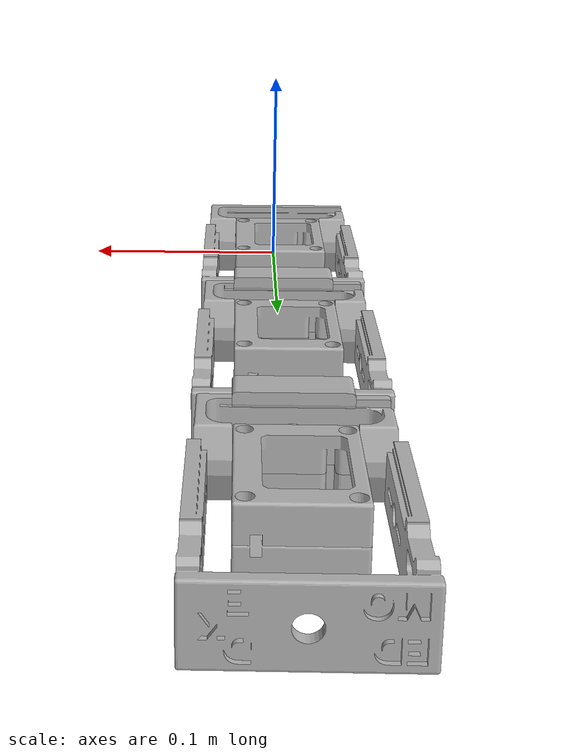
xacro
<?xml version="1.0" ?>
<robot name="edmo_assembly_3" xmlns:xacro="http://www.ros.org/wiki/xacro">

<xacro:include filename="$(find edmo_assembly_3_description)/urdf/materials.xacro" />
<xacro:include filename="$(find edmo_assembly_3_description)/urdf/edmo_assembly_3.trans" />
<xacro:include filename="$(find edmo_assembly_3_description)/urdf/edmo_assembly_3.gazebo" />
<link name="base_link">
  <inertial>
    <origin xyz="0.001207821669588994 0.03183223535104824 0.009531427697973608" rpy="0 0 0"/>
    <mass value="0.03847845253485034"/>
    <inertia ixx="3.3e-05" iyy="2.2e-05" izz="4.9e-05" ixy="-2e-06" iyz="3e-06" ixz="-0.0"/>
  </inertial>
  <visual>
    <origin xyz="0 0 0" rpy="0 0 0"/>
    <geometry>
      <mesh filename="package://edmo_assembly_3_description/meshes/base_link.stl" scale="0.001 0.001 0.001"/>
    </geometry>
    <material name="silver"/>
  </visual>
  <collision>
    <origin xyz="0 0 0" rpy="0 0 0"/>
    <geometry>
      <mesh filename="package://edmo_assembly_3_description/meshes/base_link.stl" scale="0.001 0.001 0.001"/>
    </geometry>
  </collision>
</link>

<link name="cover_1_1">
  <inertial>
    <origin xyz="-0.016929545310755478 -0.02470471330292899 0.008504756252304525" rpy="0 0 0"/>
    <mass value="0.014555566232575165"/>
    <inertia ixx="8e-06" iyy="3e-06" izz="1e-05" ixy="0.0" iyz="-0.0" ixz="-0.0"/>
  </inertial>
  <visual>
    <origin xyz="-0.017087 -0.080154 -0.012861" rpy="0 0 0"/>
    <geometry>
      <mesh filename="package://edmo_assembly_3_description/meshes/cover_1_1.stl" scale="0.001 0.001 0.001"/>
    </geometry>
    <material name="silver"/>
  </visual>
  <collision>
    <origin xyz="-0.017087 -0.080154 -0.012861" rpy="0 0 0"/>
    <geometry>
      <mesh filename="package://edmo_assembly_3_description/meshes/cover_1_1.stl" scale="0.001 0.001 0.001"/>
    </geometry>
  </collision>
</link>

<link name="arm_1_1">
  <inertial>
    <origin xyz="0.021513589764209494 0.026646215817656083 -0.049329859620566054" rpy="0 0 0"/>
    <mass value="0.03728860045356832"/>
    <inertia ixx="3.7e-05" iyy="4.1e-05" izz="7.3e-05" ixy="-0.0" iyz="0.0" ixz="-0.0"/>
  </inertial>
  <visual>
    <origin xyz="0.0225 -0.068065 -0.062065" rpy="0 0 0"/>
    <geometry>
      <mesh filename="package://edmo_assembly_3_description/meshes/arm_1_1.stl" scale="0.001 0.001 0.001"/>
    </geometry>
    <material name="silver"/>
  </visual>
  <collision>
    <origin xyz="0.0225 -0.068065 -0.062065" rpy="0 0 0"/>
    <geometry>
      <mesh filename="package://edmo_assembly_3_description/meshes/arm_1_1.stl" scale="0.001 0.001 0.001"/>
    </geometry>
  </collision>
</link>

<link name="straight_connector_1_1">
  <inertial>
    <origin xyz="4.431175758946946e-07 0.0025522929315751897 0.007885426989267698" rpy="0 0 0"/>
    <mass value="0.007137238748366013"/>
    <inertia ixx="1e-06" iyy="2e-06" izz="1e-06" ixy="0.0" iyz="-0.0" ixz="-0.0"/>
  </inertial>
  <visual>
    <origin xyz="0.001163 -0.126204 -0.012911" rpy="0 0 0"/>
    <geometry>
      <mesh filename="package://edmo_assembly_3_description/meshes/straight_connector_1_1.stl" scale="0.001 0.001 0.001"/>
    </geometry>
    <material name="silver"/>
  </visual>
  <collision>
    <origin xyz="0.001163 -0.126204 -0.012911" rpy="0 0 0"/>
    <geometry>
      <mesh filename="package://edmo_assembly_3_description/meshes/straight_connector_1_1.stl" scale="0.001 0.001 0.001"/>
    </geometry>
  </collision>
</link>

<link name="arm_2_1">
  <inertial>
    <origin xyz="0.021513589764212783 0.0265962158176552 -0.18217985962056651" rpy="0 0 0"/>
    <mass value="0.03728860045356832"/>
    <inertia ixx="3.7e-05" iyy="4.1e-05" izz="7.3e-05" ixy="-0.0" iyz="0.0" ixz="-0.0"/>
  </inertial>
  <visual>
    <origin xyz="0.0225 -0.200965 -0.194965" rpy="0 0 0"/>
    <geometry>
      <mesh filename="package://edmo_assembly_3_description/meshes/arm_2_1.stl" scale="0.001 0.001 0.001"/>
    </geometry>
    <material name="silver"/>
  </visual>
  <collision>
    <origin xyz="0.0225 -0.200965 -0.194965" rpy="0 0 0"/>
    <geometry>
      <mesh filename="package://edmo_assembly_3_description/meshes/arm_2_1.stl" scale="0.001 0.001 0.001"/>
    </geometry>
  </collision>
</link>

<link name="cover_2_1">
  <inertial>
    <origin xyz="-0.016929545310752102 -0.024704713302928588 0.008504756252304296" rpy="0 0 0"/>
    <mass value="0.014555566232575165"/>
    <inertia ixx="8e-06" iyy="3e-06" izz="1e-05" ixy="0.0" iyz="-0.0" ixz="-0.0"/>
  </inertial>
  <visual>
    <origin xyz="-0.017087 -0.213004 -0.012911" rpy="0 0 0"/>
    <geometry>
      <mesh filename="package://edmo_assembly_3_description/meshes/cover_2_1.stl" scale="0.001 0.001 0.001"/>
    </geometry>
    <material name="silver"/>
  </visual>
  <collision>
    <origin xyz="-0.017087 -0.213004 -0.012911" rpy="0 0 0"/>
    <geometry>
      <mesh filename="package://edmo_assembly_3_description/meshes/cover_2_1.stl" scale="0.001 0.001 0.001"/>
    </geometry>
  </collision>
</link>

<link name="base_link_2_1">
  <inertial>
    <origin xyz="0.002370821669591329 0.03347823535104821 -0.0033295723020268005" rpy="0 0 0"/>
    <mass value="0.03847845253485034"/>
    <inertia ixx="3.3e-05" iyy="2.2e-05" izz="4.9e-05" ixy="-2e-06" iyz="3e-06" ixz="-0.0"/>
  </inertial>
  <visual>
    <origin xyz="0.001163 -0.131204 -0.012911" rpy="0 0 0"/>
    <geometry>
      <mesh filename="package://edmo_assembly_3_description/meshes/base_link_2_1.stl" scale="0.001 0.001 0.001"/>
    </geometry>
    <material name="silver"/>
  </visual>
  <collision>
    <origin xyz="0.001163 -0.131204 -0.012911" rpy="0 0 0"/>
    <geometry>
      <mesh filename="package://edmo_assembly_3_description/meshes/base_link_2_1.stl" scale="0.001 0.001 0.001"/>
    </geometry>
  </collision>
</link>

<link name="straight_connector_2_1">
  <inertial>
    <origin xyz="4.4311757860324846e-07 0.0025522929315747733 0.007885426989267148" rpy="0 0 0"/>
    <mass value="0.007137238748366013"/>
    <inertia ixx="1e-06" iyy="2e-06" izz="1e-06" ixy="0.0" iyz="-0.0" ixz="-0.0"/>
  </inertial>
  <visual>
    <origin xyz="0.001163 -0.259054 -0.012961" rpy="0 0 0"/>
    <geometry>
      <mesh filename="package://edmo_assembly_3_description/meshes/straight_connector_2_1.stl" scale="0.001 0.001 0.001"/>
    </geometry>
    <material name="silver"/>
  </visual>
  <collision>
    <origin xyz="0.001163 -0.259054 -0.012961" rpy="0 0 0"/>
    <geometry>
      <mesh filename="package://edmo_assembly_3_description/meshes/straight_connector_2_1.stl" scale="0.001 0.001 0.001"/>
    </geometry>
  </collision>
</link>

<link name="base_link_3_1">
  <inertial>
    <origin xyz="0.0023708216695982037 0.03347823535104755 -0.003329572302027255" rpy="0 0 0"/>
    <mass value="0.03847845253485034"/>
    <inertia ixx="3.3e-05" iyy="2.2e-05" izz="4.9e-05" ixy="-2e-06" iyz="3e-06" ixz="-0.0"/>
  </inertial>
  <visual>
    <origin xyz="0.001163 -0.264054 -0.012961" rpy="0 0 0"/>
    <geometry>
      <mesh filename="package://edmo_assembly_3_description/meshes/base_link_3_1.stl" scale="0.001 0.001 0.001"/>
    </geometry>
    <material name="silver"/>
  </visual>
  <collision>
    <origin xyz="0.001163 -0.264054 -0.012961" rpy="0 0 0"/>
    <geometry>
      <mesh filename="package://edmo_assembly_3_description/meshes/base_link_3_1.stl" scale="0.001 0.001 0.001"/>
    </geometry>
  </collision>
</link>

<link name="cover_3_1">
  <inertial>
    <origin xyz="-0.016929545310742148 -0.02470471330292895 0.008504756252304065" rpy="0 0 0"/>
    <mass value="0.014555566232575165"/>
    <inertia ixx="8e-06" iyy="3e-06" izz="1e-05" ixy="0.0" iyz="-0.0" ixz="-0.0"/>
  </inertial>
  <visual>
    <origin xyz="-0.017087 -0.345854 -0.012961" rpy="0 0 0"/>
    <geometry>
      <mesh filename="package://edmo_assembly_3_description/meshes/cover_3_1.stl" scale="0.001 0.001 0.001"/>
    </geometry>
    <material name="silver"/>
  </visual>
  <collision>
    <origin xyz="-0.017087 -0.345854 -0.012961" rpy="0 0 0"/>
    <geometry>
      <mesh filename="package://edmo_assembly_3_description/meshes/cover_3_1.stl" scale="0.001 0.001 0.001"/>
    </geometry>
  </collision>
</link>

<link name="arm_3_1">
  <inertial>
    <origin xyz="0.02151358976422113 0.026546215817649932 -0.315029859620567" rpy="0 0 0"/>
    <mass value="0.03728860045356832"/>
    <inertia ixx="3.7e-05" iyy="4.1e-05" izz="7.3e-05" ixy="-0.0" iyz="0.0" ixz="-0.0"/>
  </inertial>
  <visual>
    <origin xyz="0.0225 -0.333865 -0.327865" rpy="0 0 0"/>
    <geometry>
      <mesh filename="package://edmo_assembly_3_description/meshes/arm_3_1.stl" scale="0.001 0.001 0.001"/>
    </geometry>
    <material name="silver"/>
  </visual>
  <collision>
    <origin xyz="0.0225 -0.333865 -0.327865" rpy="0 0 0"/>
    <geometry>
      <mesh filename="package://edmo_assembly_3_description/meshes/arm_3_1.stl" scale="0.001 0.001 0.001"/>
    </geometry>
  </collision>
</link>

<joint name="Rigid4" type="fixed">
  <origin xyz="0.017087 0.080154 0.012861" rpy="0 0 0"/>
  <parent link="base_link"/>
  <child link="cover_1_1"/>
</joint>

<joint name="Rev5" type="continuous">
  <origin xyz="-0.0225 0.068065 0.062065" rpy="0 0 0"/>
  <parent link="base_link"/>
  <child link="arm_1_1"/>
  <axis xyz="-1.0 -0.0 0.0"/>
</joint>

<joint name="Rigid6" type="fixed">
  <origin xyz="0.021337 0.058139 -0.049154" rpy="0 0 0"/>
  <parent link="arm_1_1"/>
  <child link="straight_connector_1_1"/>
</joint>

<joint name="Rev10" type="continuous">
  <origin xyz="-0.021337 0.069761 0.182054" rpy="0 0 0"/>
  <parent link="base_link_2_1"/>
  <child link="arm_2_1"/>
  <axis xyz="-1.0 0.0 -0.0"/>
</joint>

<joint name="Rigid11" type="fixed">
  <origin xyz="0.01825 0.0818 0.0" rpy="0 0 0"/>
  <parent link="base_link_2_1"/>
  <child link="cover_2_1"/>
</joint>

<joint name="Rigid12" type="fixed">
  <origin xyz="0.021337 0.063139 -0.049154" rpy="0 0 0"/>
  <parent link="arm_1_1"/>
  <child link="base_link_2_1"/>
</joint>

<joint name="Rigid13" type="fixed">
  <origin xyz="0.021337 0.058089 -0.182004" rpy="0 0 0"/>
  <parent link="arm_2_1"/>
  <child link="straight_connector_2_1"/>
</joint>

<joint name="Rigid15" type="fixed">
  <origin xyz="0.021337 0.063089 -0.182004" rpy="0 0 0"/>
  <parent link="arm_2_1"/>
  <child link="base_link_3_1"/>
</joint>

<joint name="Rigid16" type="fixed">
  <origin xyz="0.01825 0.0818 0.0" rpy="0 0 0"/>
  <parent link="base_link_3_1"/>
  <child link="cover_3_1"/>
</joint>

<joint name="Rev17" type="continuous">
  <origin xyz="-0.021337 0.069811 0.314904" rpy="0 0 0"/>
  <parent link="base_link_3_1"/>
  <child link="arm_3_1"/>
  <axis xyz="-1.0 0.0 -0.0"/>
</joint>

</robot>

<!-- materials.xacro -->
<robot name="edmo_assembly_3" xmlns:xacro="http://www.ros.org/wiki/xacro" >

<material name="silver">
  <color rgba="0.700 0.700 0.700 1.000"/>
</material>

</robot>

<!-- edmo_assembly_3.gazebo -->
<robot name="edmo_assembly_3" xmlns:xacro="http://www.ros.org/wiki/xacro" >

<xacro:property name="body_color" value="Gazebo/Silver" />

<gazebo>
  <plugin name="control" filename="libgazebo_ros_control.so"/>
</gazebo>
<gazebo reference="base_link">
  <material>${body_color}</material>
  <mu1>0.2</mu1>
  <mu2>0.2</mu2>
  <selfCollide>true</selfCollide>
  <gravity>true</gravity>
</gazebo>

<gazebo reference="cover_1_1">
  <material>${body_color}</material>
  <mu1>0.2</mu1>
  <mu2>0.2</mu2>
  <selfCollide>true</selfCollide>
</gazebo>

<gazebo reference="arm_1_1">
  <material>${body_color}</material>
  <mu1>0.2</mu1>
  <mu2>0.2</mu2>
  <selfCollide>true</selfCollide>
</gazebo>

<gazebo reference="straight_connector_1_1">
  <material>${body_color}</material>
  <mu1>0.2</mu1>
  <mu2>0.2</mu2>
  <selfCollide>true</selfCollide>
</gazebo>

<gazebo reference="arm_2_1">
  <material>${body_color}</material>
  <mu1>0.2</mu1>
  <mu2>0.2</mu2>
  <selfCollide>true</selfCollide>
</gazebo>

<gazebo reference="cover_2_1">
  <material>${body_color}</material>
  <mu1>0.2</mu1>
  <mu2>0.2</mu2>
  <selfCollide>true</selfCollide>
</gazebo>

<gazebo reference="base_link_2_1">
  <material>${body_color}</material>
  <mu1>0.2</mu1>
  <mu2>0.2</mu2>
  <selfCollide>true</selfCollide>
</gazebo>

<gazebo reference="straight_connector_2_1">
  <material>${body_color}</material>
  <mu1>0.2</mu1>
  <mu2>0.2</mu2>
  <selfCollide>true</selfCollide>
</gazebo>

<gazebo reference="base_link_3_1">
  <material>${body_color}</material>
  <mu1>0.2</mu1>
  <mu2>0.2</mu2>
  <selfCollide>true</selfCollide>
</gazebo>

<gazebo reference="cover_3_1">
  <material>${body_color}</material>
  <mu1>0.2</mu1>
  <mu2>0.2</mu2>
  <selfCollide>true</selfCollide>
</gazebo>

<gazebo reference="arm_3_1">
  <material>${body_color}</material>
  <mu1>0.2</mu1>
  <mu2>0.2</mu2>
  <selfCollide>true</selfCollide>
</gazebo>

</robot>
